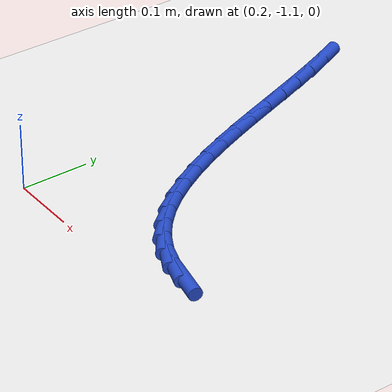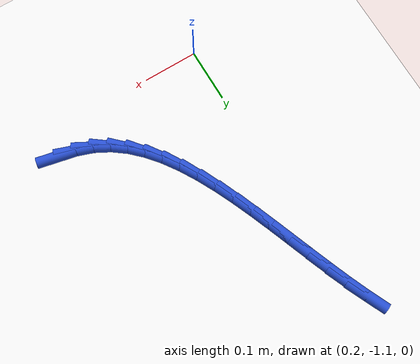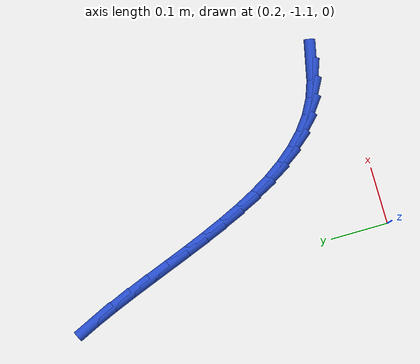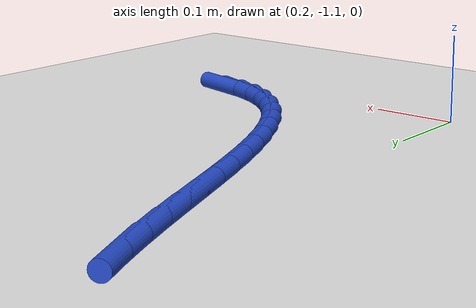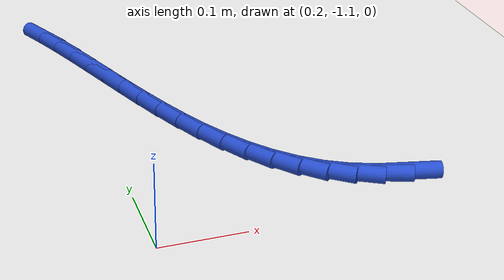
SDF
<sdf version="1.6">
 <world name="default">
  <model name="ground_plane">
   <static>1</static>
   <link name="link">
    <collision name="collision">
     <geometry><plane><normal>0 0 1</normal><size>100 100</size></plane></geometry>
     <surface><friction><ode><mu>100</mu><mu2>50</mu2></ode></friction></surface>
    </collision>
    <visual name="visual">
     <cast_shadows>0</cast_shadows>
     <geometry><plane><normal>0 0 1</normal><size>100 100</size></plane></geometry>
     <material>
      <script><uri>file://media/materials/scripts/gazebo.material</uri><name>Gazebo/WhiteGlow</name></script>
     </material>
    </visual>
   </link>
  </model>
  <model name="line">
   <link name="link_176">
    <pose>0.5028988732936691 -1.0517569077300806 0.01 0 1.57 -0.21487540605571737</pose>
    <collision name="collision">
     <geometry><cylinder><radius>0.01</radius><length>0.08</length></cylinder></geometry>
    </collision>
    <visual name="visual">
     <material>
      <script><name>Gazebo/Blue</name><uri>file://media/materials/scripts/gazebo.material</uri></script>
     </material>
     <geometry><cylinder><radius>0.01</radius><length>0.08</length></cylinder></geometry>
    </visual>
   </link>
   <link name="link_177">
    <pose>0.47151908668074094 -1.0449084362069256 0.01 0 1.57 -0.3438796548049811</pose>
    <collision name="collision">
     <geometry><cylinder><radius>0.01</radius><length>0.08</length></cylinder></geometry>
    </collision>
    <visual name="visual">
     <material>
      <script><name>Gazebo/Blue</name><uri>file://media/materials/scripts/gazebo.material</uri></script>
     </material>
     <geometry><cylinder><radius>0.01</radius><length>0.08</length></cylinder></geometry>
    </visual>
   </link>
   <link name="link_178">
    <pose>0.4422972195326271 -1.0344438513980374 0.01 0 1.57 -0.49768112761322075</pose>
    <collision name="collision">
     <geometry><cylinder><radius>0.01</radius><length>0.08</length></cylinder></geometry>
    </collision>
    <visual name="visual">
     <material>
      <script><name>Gazebo/Blue</name><uri>file://media/materials/scripts/gazebo.material</uri></script>
     </material>
     <geometry><cylinder><radius>0.01</radius><length>0.08</length></cylinder></geometry>
    </visual>
   </link>
   <link name="link_179">
    <pose>0.41545023803893605 -1.0198580108587898 0.01 0 1.57 -0.645833927580848</pose>
    <collision name="collision">
     <geometry><cylinder><radius>0.01</radius><length>0.08</length></cylinder></geometry>
    </collision>
    <visual name="visual">
     <material>
      <script><name>Gazebo/Blue</name><uri>file://media/materials/scripts/gazebo.material</uri></script>
     </material>
     <geometry><cylinder><radius>0.01</radius><length>0.08</length></cylinder></geometry>
    </visual>
   </link>
   <link name="link_180">
    <pose>0.3908599076366704 -1.0013254733206431 0.01 0 1.57 -0.775383302414807</pose>
    <collision name="collision">
     <geometry><cylinder><radius>0.01</radius><length>0.08</length></cylinder></geometry>
    </collision>
    <visual name="visual">
     <material>
      <script><name>Gazebo/Blue</name><uri>file://media/materials/scripts/gazebo.material</uri></script>
     </material>
     <geometry><cylinder><radius>0.01</radius><length>0.08</length></cylinder></geometry>
    </visual>
   </link>
   <link name="link_181">
    <pose>0.3683089140026877 -0.9792217058631846 0.01 0 1.57 -0.8843712380625424</pose>
    <collision name="collision">
     <geometry><cylinder><radius>0.01</radius><length>0.08</length></cylinder></geometry>
    </collision>
    <visual name="visual">
     <material>
      <script><name>Gazebo/Blue</name><uri>file://media/materials/scripts/gazebo.material</uri></script>
     </material>
     <geometry><cylinder><radius>0.01</radius><length>0.08</length></cylinder></geometry>
    </visual>
   </link>
   <link name="link_182">
    <pose>0.34757992801908505 -0.9539222055659815 0.01 0 1.57 -0.9735494684908925</pose>
    <collision name="collision">
     <geometry><cylinder><radius>0.01</radius><length>0.08</length></cylinder></geometry>
    </collision>
    <visual name="visual">
     <material>
      <script><name>Gazebo/Blue</name><uri>file://media/materials/scripts/gazebo.material</uri></script>
     </material>
     <geometry><cylinder><radius>0.01</radius><length>0.08</length></cylinder></geometry>
    </visual>
   </link>
   <link name="link_183">
    <pose>0.3284556205679589 -0.9258024695086006 0.01 0 1.57 -1.0449784514525065</pose>
    <collision name="collision">
     <geometry><cylinder><radius>0.01</radius><length>0.08</length></cylinder></geometry>
    </collision>
    <visual name="visual">
     <material>
      <script><name>Gazebo/Blue</name><uri>file://media/materials/scripts/gazebo.material</uri></script>
     </material>
     <geometry><cylinder><radius>0.01</radius><length>0.08</length></cylinder></geometry>
    </visual>
   </link>
   <link name="link_184">
    <pose>0.3107186625314072 -0.8952379947706108 0.01 0 1.57 -1.1010369470240007</pose>
    <collision name="collision">
     <geometry><cylinder><radius>0.01</radius><length>0.08</length></cylinder></geometry>
    </collision>
    <visual name="visual">
     <material>
      <script><name>Gazebo/Blue</name><uri>file://media/materials/scripts/gazebo.material</uri></script>
     </material>
     <geometry><cylinder><radius>0.01</radius><length>0.08</length></cylinder></geometry>
    </visual>
   </link>
   <link name="link_185">
    <pose>0.29415172479152657 -0.8626042784315794 0.01 0 1.57 -1.143906786568969</pose>
    <collision name="collision">
     <geometry><cylinder><radius>0.01</radius><length>0.08</length></cylinder></geometry>
    </collision>
    <visual name="visual">
     <material>
      <script><name>Gazebo/Blue</name><uri>file://media/materials/scripts/gazebo.material</uri></script>
     </material>
     <geometry><cylinder><radius>0.01</radius><length>0.08</length></cylinder></geometry>
    </visual>
   </link>
   <link name="link_186">
    <pose>0.278537478230414 -0.8282768175710735 0.01 0 1.57 -1.17537177698122</pose>
    <collision name="collision">
     <geometry><cylinder><radius>0.01</radius><length>0.08</length></cylinder></geometry>
    </collision>
    <visual name="visual">
     <material>
      <script><name>Gazebo/Blue</name><uri>file://media/materials/scripts/gazebo.material</uri></script>
     </material>
     <geometry><cylinder><radius>0.01</radius><length>0.08</length></cylinder></geometry>
    </visual>
   </link>
   <link name="link_187">
    <pose>0.2636585937301666 -0.7926311092686611 0.01 0 1.57 -1.196774946298103</pose>
    <collision name="collision">
     <geometry><cylinder><radius>0.01</radius><length>0.08</length></cylinder></geometry>
    </collision>
    <visual name="visual">
     <material>
      <script><name>Gazebo/Blue</name><uri>file://media/materials/scripts/gazebo.material</uri></script>
     </material>
     <geometry><cylinder><radius>0.01</radius><length>0.08</length></cylinder></geometry>
    </visual>
   </link>
   <link name="link_188">
    <pose>0.24929774217288117 -0.7560426506039092 0.01 0 1.57 -1.2090381346970185</pose>
    <collision name="collision">
     <geometry><cylinder><radius>0.01</radius><length>0.08</length></cylinder></geometry>
    </collision>
    <visual name="visual">
     <material>
      <script><name>Gazebo/Blue</name><uri>file://media/materials/scripts/gazebo.material</uri></script>
     </material>
     <geometry><cylinder><radius>0.01</radius><length>0.08</length></cylinder></geometry>
    </visual>
   </link>
   <link name="link_189">
    <pose>0.2352375944406546 -0.7188869386563849 0.01 0 1.57 -1.2126954935541503</pose>
    <collision name="collision">
     <geometry><cylinder><radius>0.01</radius><length>0.08</length></cylinder></geometry>
    </collision>
    <visual name="visual">
     <material>
      <script><name>Gazebo/Blue</name><uri>file://media/materials/scripts/gazebo.material</uri></script>
     </material>
     <geometry><cylinder><radius>0.01</radius><length>0.08</length></cylinder></geometry>
    </visual>
   </link>
   <link name="link_190">
    <pose>0.22126082141558454 -0.6815394705056572 0.01 0 1.57 -1.2079194805414037</pose>
    <collision name="collision">
     <geometry><cylinder><radius>0.01</radius><length>0.08</length></cylinder></geometry>
    </collision>
    <visual name="visual">
     <material>
      <script><name>Gazebo/Blue</name><uri>file://media/materials/scripts/gazebo.material</uri></script>
     </material>
     <geometry><cylinder><radius>0.01</radius><length>0.08</length></cylinder></geometry>
    </visual>
   </link>
   <link name="link_191">
    <pose>0.2071500939797676 -0.6443757432312931 0.01 0 1.57 -1.194531201876001</pose>
    <collision name="collision">
     <geometry><cylinder><radius>0.01</radius><length>0.08</length></cylinder></geometry>
    </collision>
    <visual name="visual">
     <material>
      <script><name>Gazebo/Blue</name><uri>file://media/materials/scripts/gazebo.material</uri></script>
     </material>
     <geometry><cylinder><radius>0.01</radius><length>0.08</length></cylinder></geometry>
    </visual>
   </link>
   <link name="link_192">
    <pose>0.19268808301530094 -0.60777125391286 0.01 0 1.57 -1.1719934015989213</pose>
    <collision name="collision">
     <geometry><cylinder><radius>0.01</radius><length>0.08</length></cylinder></geometry>
    </collision>
    <visual name="visual">
     <material>
      <script><name>Gazebo/Blue</name><uri>file://media/materials/scripts/gazebo.material</uri></script>
     </material>
     <geometry><cylinder><radius>0.01</radius><length>0.08</length></cylinder></geometry>
    </visual>
   </link>
   <link name="link_193">
    <pose>0.17765745940428151 -0.5721014996299258 0.01 0 1.57 -1.140781848018274</pose>
    <collision name="collision">
     <geometry><cylinder><radius>0.01</radius><length>0.08</length></cylinder></geometry>
    </collision>
    <visual name="visual">
     <material>
      <script><name>Gazebo/Blue</name><uri>file://media/materials/scripts/gazebo.material</uri></script>
     </material>
     <geometry><cylinder><radius>0.01</radius><length>0.08</length></cylinder></geometry>
    </visual>
   </link>
  </model>
 </world>
</sdf>
